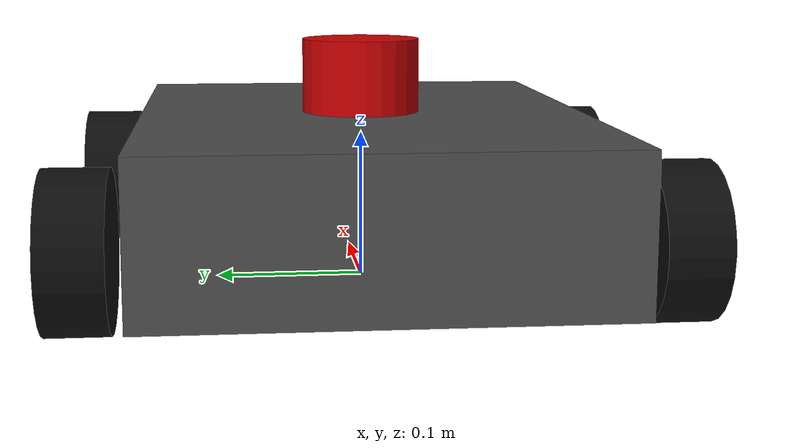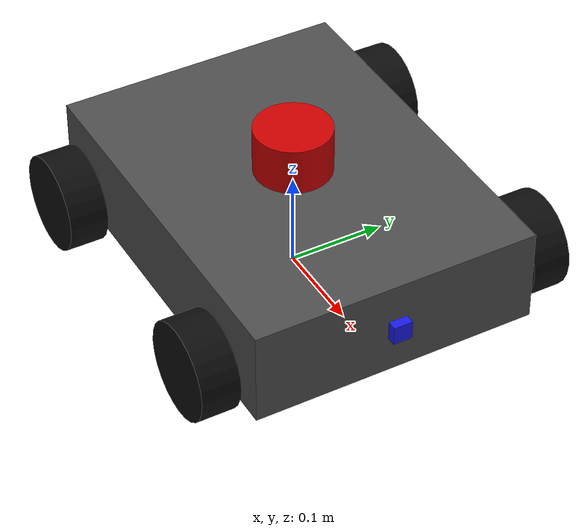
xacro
<?xml version="1.0"?>
<robot name="diffbot" xmlns:xacro="http://www.ros.org/wiki/xacro">

  <xacro:arg name="config_file" default="two_wheel_controllers.yaml"/>
  <xacro:arg name="robot_namespace" default=""/>

  <!-- ================= PARAMETERS ================= -->
  <xacro:property name="chassis_length" value="0.40"/>
  <xacro:property name="chassis_width"  value="0.30"/>
  <xacro:property name="chassis_height" value="0.10"/>
  <xacro:property name="chassis_mass"   value="5.0"/>

  <xacro:property name="wheel_radius"   value="0.05"/>
  <xacro:property name="wheel_width"    value="0.04"/>
  <xacro:property name="wheel_mass"     value="0.5"/>
  <xacro:property name="wheel_y_offset" value="0.18"/>

  <xacro:property name="caster_radius"  value="0.05"/>
  <xacro:property name="caster_mass"    value="0.2"/>
  <xacro:property name="caster_x_offset" value="0.17"/>

  <xacro:property name="lidar_radius"   value="0.04"/>
  <xacro:property name="lidar_height"   value="0.05"/>

  <xacro:property name="camera_size"    value="0.02"/>
  <xacro:property name="chassis_z_offset" value="0.015"/>

  <material name="chassis_grey"><color rgba="0.3 0.3 0.3 1.0"/></material>
  <material name="wheel_black"><color rgba="0.05 0.05 0.05 1.0"/></material>
  <material name="lidar_red"><color rgba="0.8 0.0 0.0 1.0"/></material>
  <material name="camera_blue"><color rgba="0.1 0.1 0.9 1.0"/></material>

  <!-- ================= INERTIA MACROS ================= -->
  <xacro:macro name="box_inertia" params="mass x y z">
    <inertia ixx="${mass/12.0*(y*y+z*z)}" ixy="0.0" ixz="0.0"
             iyy="${mass/12.0*(x*x+z*z)}" iyz="0.0"
             izz="${mass/12.0*(x*x+y*y)}"/>
  </xacro:macro>

  <xacro:macro name="cylinder_inertia" params="mass r h">
    <inertia ixx="${mass/12.0*(3*r*r+h*h)}" ixy="0.0" ixz="0.0"
             iyy="${mass/12.0*(3*r*r+h*h)}" iyz="0.0"
             izz="${mass/2.0*r*r}"/>
  </xacro:macro>

  <xacro:macro name="sphere_inertia" params="mass r">
    <inertia ixx="${2.0/5.0*mass*r*r}" ixy="0.0" ixz="0.0"
             iyy="${2.0/5.0*mass*r*r}" iyz="0.0"
             izz="${2.0/5.0*mass*r*r}"/>
  </xacro:macro>

  <!-- ================= BASE LINK ================= -->
  <link name="base_footprint"/>

  <joint name="base_footprint_joint" type="fixed">
    <parent link="base_footprint"/>
    <child link="base_link"/>
    <origin xyz="0 0 ${wheel_radius}" rpy="0 0 0"/>
  </joint>

  <link name="base_link">
    <visual>
      <origin xyz="0 0 ${chassis_z_offset}" rpy="0 0 0"/>
      <geometry><box size="${chassis_length} ${chassis_width} ${chassis_height}"/></geometry>
      <material name="chassis_grey"/>
    </visual>
    <collision>
      <origin xyz="0 0 ${chassis_z_offset}" rpy="0 0 0"/>
      <geometry><box size="${chassis_length} ${chassis_width} ${chassis_height}"/></geometry>
    </collision>
    <inertial>
      <mass value="${chassis_mass}"/>
      <origin xyz="0 0 ${chassis_z_offset}" rpy="0 0 0"/>
      <xacro:box_inertia mass="${chassis_mass}" x="${chassis_length}" y="${chassis_width}" z="${chassis_height}"/>
    </inertial>
  </link>

  <gazebo reference="base_link">
    <material>Gazebo/Grey</material>
  </gazebo>

  <!-- ================= DRIVE WHEEL MACRO ================= -->
  <xacro:macro name="wheel" params="prefix x_reflect y_reflect mu1:=1.0 mu2:=1.0">
    <link name="${prefix}_wheel_link">
      <visual>
        <origin xyz="0 0 0" rpy="${pi/2} 0 0"/>
        <geometry><cylinder radius="${wheel_radius}" length="${wheel_width}"/></geometry>
        <material name="wheel_black"/>
      </visual>
      <collision>
        <origin xyz="0 0 0" rpy="${pi/2} 0 0"/>
        <geometry><cylinder radius="${wheel_radius}" length="${wheel_width}"/></geometry>
      </collision>
      <inertial>
        <mass value="${wheel_mass}"/>
        <origin xyz="0 0 0" rpy="0 0 0"/>
        <xacro:cylinder_inertia mass="${wheel_mass}" r="${wheel_radius}" h="${wheel_width}"/>
      </inertial>
    </link>

    <joint name="${prefix}_wheel_joint" type="continuous">
      <parent link="base_link"/>
      <child link="${prefix}_wheel_link"/>
      <origin xyz="${x_reflect*0.14} ${y_reflect*wheel_y_offset} 0" rpy="0 0 0"/>
      <axis xyz="0 1 0"/>
      <dynamics damping="0.1" friction="0.05"/>
    </joint>

    <gazebo reference="${prefix}_wheel_link">
      <material>Gazebo/Black</material>
      <mu1>${mu1}</mu1>
      <mu2>${mu2}</mu2>
      <kp>1000000.0</kp>
      <kd>100.0</kd>
      <minDepth>0.001</minDepth>
    </gazebo>
  </xacro:macro>

  <xacro:wheel prefix="front_left"  x_reflect="1"  y_reflect="1"  mu1="1.0" mu2="1.0"/>
  <xacro:wheel prefix="rear_left"   x_reflect="-1" y_reflect="1"  mu1="1.0" mu2="0.05"/>
  <xacro:wheel prefix="front_right" x_reflect="1"  y_reflect="-1" mu1="1.0" mu2="1.0"/>
  <xacro:wheel prefix="rear_right"  x_reflect="-1" y_reflect="-1" mu1="1.0" mu2="0.05"/>

  <!-- ================= LIDAR (top) ================= -->
  <link name="lidar_link">
    <visual>
      <origin xyz="0 0 0" rpy="0 0 0"/>
      <geometry><cylinder radius="${lidar_radius}" length="${lidar_height}"/></geometry>
      <material name="lidar_red"/>
    </visual>
    <collision>
      <origin xyz="0 0 0" rpy="0 0 0"/>
      <geometry><cylinder radius="${lidar_radius}" length="${lidar_height}"/></geometry>
    </collision>
    <inertial>
      <mass value="0.1"/>
      <origin xyz="0 0 0" rpy="0 0 0"/>
      <xacro:cylinder_inertia mass="0.1" r="${lidar_radius}" h="${lidar_height}"/>
    </inertial>
  </link>

  <joint name="lidar_joint" type="fixed">
    <parent link="base_link"/>
    <child link="lidar_link"/>
    <origin xyz="0 0 ${chassis_height/2 + lidar_height/2 + chassis_z_offset}" rpy="0 0 0"/>
  </joint>

  <gazebo reference="lidar_link">
    <sensor name="lidar_sensor" type="gpu_lidar">
      <pose>0 0 0 0 0 0</pose>
      <topic>/$(arg robot_namespace)/scan</topic>
      <update_rate>10</update_rate>
      <ray>
        <scan>
          <horizontal>
            <samples>270</samples>
            <resolution>1</resolution>
            <min_angle>-2.35619</min_angle>
            <max_angle>2.35619</max_angle>
          </horizontal>
        </scan>
        <range>
          <min>0.12</min>
          <max>10.0</max>
          <resolution>0.01</resolution>
        </range>
        <noise>
          <type>gaussian</type>
          <mean>0.0</mean>
          <stddev>0.01</stddev>
        </noise>
      </ray>
      <always_on>true</always_on>
      <visualize>true</visualize>
      <gz_frame_id>$(arg robot_namespace)/lidar_link</gz_frame_id>
    </sensor>
  </gazebo>

  <!-- ================= CAMERA (front) ================= -->
  <link name="camera_link">
    <visual>
      <origin xyz="0 0 0" rpy="0 0 0"/>
      <geometry><box size="${camera_size} ${camera_size} ${camera_size}"/></geometry>
      <material name="camera_blue"/>
    </visual>
    <collision>
      <origin xyz="0 0 0" rpy="0 0 0"/>
      <geometry><box size="${camera_size} ${camera_size} ${camera_size}"/></geometry>
    </collision>
    <inertial>
      <mass value="0.05"/>
      <origin xyz="0 0 0" rpy="0 0 0"/>
      <xacro:box_inertia mass="0.05" x="${camera_size}" y="${camera_size}" z="${camera_size}"/>
    </inertial>
  </link>

  <joint name="camera_joint" type="fixed">
    <parent link="base_link"/>
    <child link="camera_link"/>
    <origin xyz="${chassis_length/2} 0 ${chassis_z_offset}" rpy="0 0 0"/>
  </joint>

  <!-- optical frame, REP-103 convention -->
  <link name="camera_optical_link"/>
  <joint name="camera_optical_joint" type="fixed">
    <parent link="camera_link"/>
    <child link="camera_optical_link"/>
    <origin xyz="0 0 0" rpy="${-pi/2} 0 ${-pi/2}"/>
  </joint>

  <gazebo reference="camera_link">
    <sensor name="front_camera" type="camera">
      <pose>0 0 0 0 0 0</pose>
      <topic>/$(arg robot_namespace)/camera/image_raw</topic>
      <update_rate>10</update_rate>
      <camera>
        <horizontal_fov>1.047</horizontal_fov>
        <image>
          <width>320</width>
          <height>240</height>
        </image>
        <clip>
          <near>0.05</near>
          <far>50</far>
        </clip>
      </camera>
      <always_on>true</always_on>
      <visualize>true</visualize>
      <gz_frame_id>$(arg robot_namespace)/camera_optical_link</gz_frame_id>
    </sensor>
  </gazebo>
  <!-- ================= IMU ================= -->
  <link name="imu_link">
    <visual>
      <origin xyz="0 0 0" rpy="0 0 0"/>
      <geometry><box size="0.02 0.02 0.01"/></geometry>
    </visual>
    <inertial>
      <mass value="0.01"/>
      <origin xyz="0 0 0" rpy="0 0 0"/>
      <xacro:box_inertia mass="0.01" x="0.02" y="0.02" z="0.01"/>
    </inertial>
  </link>

  <joint name="imu_joint" type="fixed">
    <parent link="base_link"/>
    <child link="imu_link"/>
    <origin xyz="0 0 ${chassis_z_offset}" rpy="0 0 0"/>
  </joint>

  <gazebo reference="imu_link">
    <sensor name="imu_sensor" type="imu">
      <pose>0 0 0 0 0 0</pose>
      <topic>/$(arg robot_namespace)/imu</topic>
      <update_rate>50</update_rate>
      <always_on>true</always_on>
      <gz_frame_id>$(arg robot_namespace)/imu_link</gz_frame_id>
    </sensor>
  </gazebo>

  <!-- ================= ros2_control (diff drive) ================= -->
  <ros2_control name="GazeboSystem" type="system">
    <hardware>
      <plugin>gz_ros2_control/GazeboSimSystem</plugin>
    </hardware>
    <joint name="front_left_wheel_joint">
      <command_interface name="velocity"/>
      <state_interface name="velocity"/>
      <state_interface name="position"/>
    </joint>
    <joint name="rear_left_wheel_joint">
      <command_interface name="velocity"/>
      <state_interface name="velocity"/>
      <state_interface name="position"/>
    </joint>
    <joint name="front_right_wheel_joint">
      <command_interface name="velocity"/>
      <state_interface name="velocity"/>
      <state_interface name="position"/>
    </joint>
    <joint name="rear_right_wheel_joint">
      <command_interface name="velocity"/>
      <state_interface name="velocity"/>
      <state_interface name="position"/>
    </joint>
  </ros2_control>

  <gazebo>
    <plugin filename="gz-sim-pose-publisher-system" name="gz::sim::systems::PosePublisher">
      <publish_model_pose>true</publish_model_pose>
      <publish_link_pose>false</publish_link_pose>
      <publish_visual_pose>false</publish_visual_pose>
      <publish_nested_model_pose>false</publish_nested_model_pose>
      <use_pose_vector_msg>true</use_pose_vector_msg>
      <static_publisher>false</static_publisher>
      <static_update_frequency>50</static_update_frequency>
    </plugin>
  </gazebo>

  <gazebo>
    <plugin filename="gz_ros2_control-system" name="gz_ros2_control::GazeboSimROS2ControlPlugin">
      <parameters>$(find amr_leader_follower)/config/$(arg config_file)</parameters>
      <robot_param>robot_description</robot_param>
      <robot_param_node>robot_state_publisher</robot_param_node>
      <ros>
        <namespace>/$(arg robot_namespace)</namespace>
        <remapping>tf:=/tf</remapping>
        <remapping>tf_static:=/tf_static</remapping>
      </ros>
    </plugin>
  </gazebo>

</robot>
